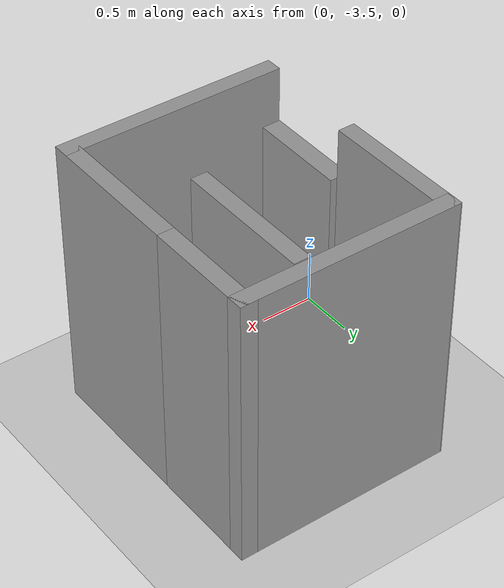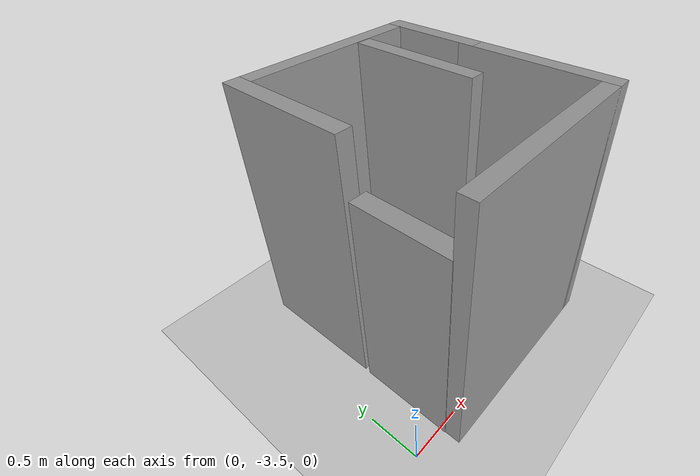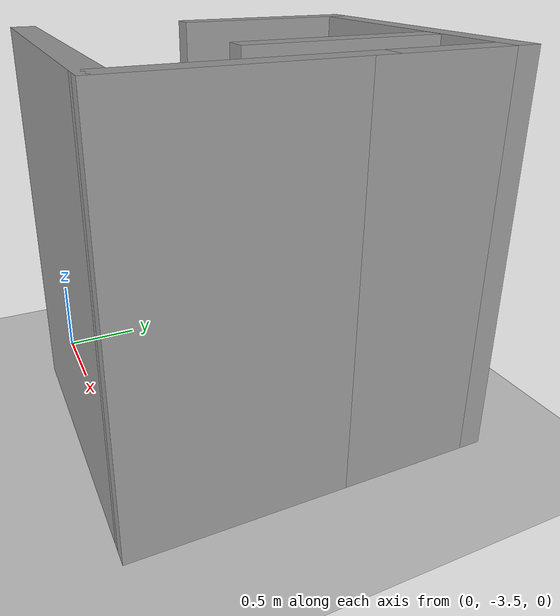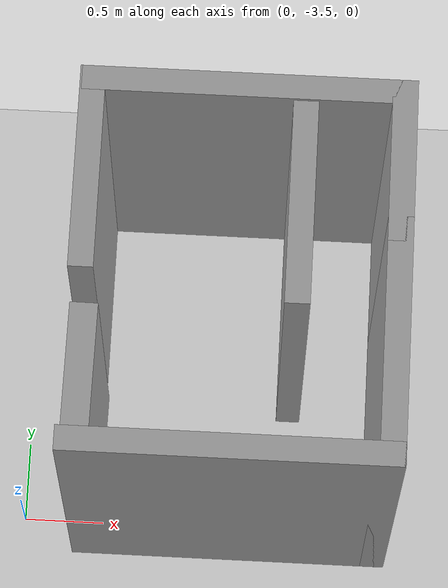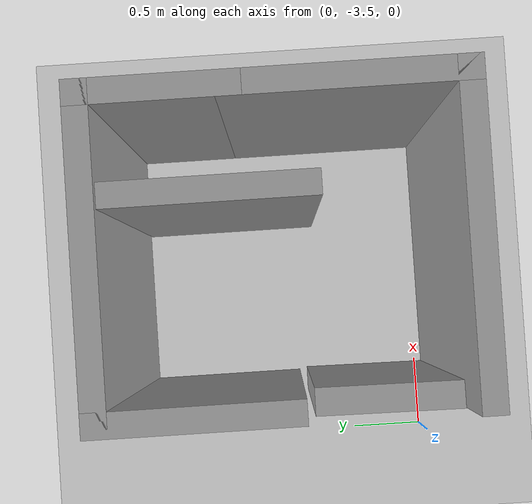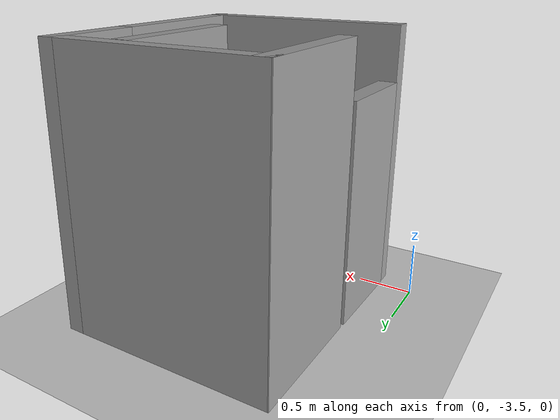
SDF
<sdf version="1.7">
 <world name="default">
  <light name="sun" type="directional">
   <pose>0 0 10 0 -0 0</pose>
   <diffuse>0.8 0.8 0.8 1</diffuse>
   <specular>0.2 0.2 0.2 1</specular>
   <attenuation>
    <range>1000</range>
    <constant>0.9</constant>
    <linear>0.01</linear>
    <quadratic>0.001</quadratic>
   </attenuation>
   <direction>-0.5 0.1 -0.9</direction>
   <spot><inner_angle>0</inner_angle><outer_angle>0</outer_angle><falloff>0</falloff></spot>
  </light>
  <model name="ground_plane">
   <static>1</static>
   <link name="link">
    <collision name="collision">
     <geometry><plane><normal>0 0 1</normal><size>100 100</size></plane></geometry>
     <surface>
      <contact><collide_bitmask>65535</collide_bitmask></contact>
      <friction><ode><mu>100</mu><mu2>50</mu2></ode></friction>
     </surface>
    </collision>
    <visual name="visual">
     <cast_shadows>0</cast_shadows>
     <geometry><plane><normal>0 0 1</normal><size>100 100</size></plane></geometry>
     <material>
      <script><uri>file://media/materials/scripts/gazebo.material</uri><name>Gazebo/Grey</name></script>
     </material>
    </visual>
   </link>
  </model>
  <gravity>0 0 -9.8</gravity>
  <magnetic_field>6e-06 2.3e-05 -4.2e-05</magnetic_field>
  <atmosphere type="adiabatic"/>
  <physics type="ode">
   <max_step_size>0.001</max_step_size>
   <real_time_factor>1</real_time_factor>
   <real_time_update_rate>1000</real_time_update_rate>
  </physics>
  <scene><ambient>0.4 0.4 0.4 1</ambient><background>0.7 0.7 0.7 1</background><shadows>1</shadows></scene>
  <audio><device>default</device></audio>
  <spherical_coordinates>
   <surface_model>EARTH_WGS84</surface_model>
   <latitude_deg>0</latitude_deg>
   <longitude_deg>0</longitude_deg>
   <elevation>0</elevation>
   <heading_deg>0</heading_deg>
  </spherical_coordinates>
  <model name="home_test">
   <pose>2.3813 -0.766006 0 0 -0 0</pose>
   <link name="Door_0">
    <collision name="Door_0_Collision">
     <geometry><box><size>0.9 0.17 2</size></box></geometry>
     <pose>0 0 1 0 -0 0</pose>
    </collision>
    <visual name="Door_0_Visual">
     <pose>0 0 1 0 -0 0</pose>
     <geometry><box><size>0.9 0.17 2</size></box></geometry>
     <material>
      <script><uri>file://media/materials/scripts/gazebo.material</uri><name>Gazebo/Grey</name></script>
     </material>
    </visual>
    <pose>-1.9825 -2.3375 0 0 0 -1.5818</pose>
   </link>
   <link name="Wall_10">
    <collision name="Wall_10_Collision">
     <geometry><box><size>1.25 0.15 2.5</size></box></geometry>
     <pose>0 0 1.25 0 -0 0</pose>
    </collision>
    <visual name="Wall_10_Visual">
     <pose>0 0 1.25 0 -0 0</pose>
     <geometry><box><size>1.25 0.15 2.5</size></box></geometry>
     <material>
      <script><uri>file://media/materials/scripts/gazebo.material</uri><name>Gazebo/Grey</name></script>
      <ambient>1 1 1 1</ambient>
     </material>
     <meta><layer>0</layer></meta>
    </visual>
    <pose>-0.7225 -1.3675 0 0 -0 -1.5708</pose>
   </link>
   <link name="Wall_4">
    <collision name="Wall_4_Collision">
     <geometry><box><size>2 0.15 2.5</size></box></geometry>
     <pose>0 0 1.25 0 -0 0</pose>
    </collision>
    <visual name="Wall_4_Visual">
     <pose>0 0 1.25 0 -0 0</pose>
     <geometry><box><size>2 0.15 2.5</size></box></geometry>
     <material>
      <script><uri>file://media/materials/scripts/gazebo.material</uri><name>Gazebo/Grey</name></script>
      <ambient>1 1 1 1</ambient>
     </material>
     <meta><layer>0</layer></meta>
    </visual>
    <pose>-1.0675 -2.8575 0 0 -0 0</pose>
   </link>
   <link name="Wall_5">
    <collision name="Wall_5_Collision">
     <geometry><box><size>1.5 0.15 2.5</size></box></geometry>
     <pose>0 0 1.25 0 -0 0</pose>
    </collision>
    <visual name="Wall_5_Visual">
     <pose>0 0 1.25 0 -0 0</pose>
     <geometry><box><size>1.5 0.15 2.5</size></box></geometry>
     <material>
      <script><uri>file://media/materials/scripts/gazebo.material</uri><name>Gazebo/Grey</name></script>
      <ambient>1 1 1 1</ambient>
     </material>
     <meta><layer>0</layer></meta>
    </visual>
    <pose>-0.1425 -2.1825 0 0 -0 1.5708</pose>
   </link>
   <link name="Wall_6">
    <collision name="Wall_6_Collision">
     <geometry><box><size>1 0.15 2.5</size></box></geometry>
     <pose>0 0 1.25 0 -0 0</pose>
    </collision>
    <visual name="Wall_6_Visual">
     <pose>0 0 1.25 0 -0 0</pose>
     <geometry><box><size>1 0.15 2.5</size></box></geometry>
     <material>
      <script><uri>file://media/materials/scripts/gazebo.material</uri><name>Gazebo/Grey</name></script>
      <ambient>1 1 1 1</ambient>
     </material>
     <meta><layer>0</layer></meta>
    </visual>
    <pose>-0.1425 -1.0825 0 0 -0 1.5708</pose>
   </link>
   <link name="Wall_7">
    <collision name="Wall_7_Collision">
     <geometry><box><size>1.98 0.15 2.5</size></box></geometry>
     <pose>0 0 1.25 0 -0 0</pose>
    </collision>
    <visual name="Wall_7_Visual">
     <pose>0 0 1.25 0 -0 0</pose>
     <geometry><box><size>1.98 0.15 2.5</size></box></geometry>
     <material>
      <script><uri>file://media/materials/scripts/gazebo.material</uri><name>Gazebo/Grey</name></script>
      <ambient>1 1 1 1</ambient>
     </material>
     <meta><layer>0</layer></meta>
    </visual>
    <pose>-1.0575 -0.6575 0 0 -0 3.14159</pose>
   </link>
   <link name="Wall_8">
    <collision name="Wall_8_Collision">
     <geometry><box><size>1.25 0.15 2.5</size></box></geometry>
     <pose>0 0 1.25 0 -0 0</pose>
    </collision>
    <visual name="Wall_8_Visual">
     <pose>0 0 1.25 0 -0 0</pose>
     <geometry><box><size>1.25 0.15 2.5</size></box></geometry>
     <material>
      <script><uri>file://media/materials/scripts/gazebo.material</uri><name>Gazebo/Grey</name></script>
      <ambient>1 1 1 1</ambient>
     </material>
     <meta><layer>0</layer></meta>
    </visual>
    <pose>-1.9825 -1.2075 0 0 -0 -1.5708</pose>
   </link>
   <static>1</static>
  </model>
 </world>
</sdf>
